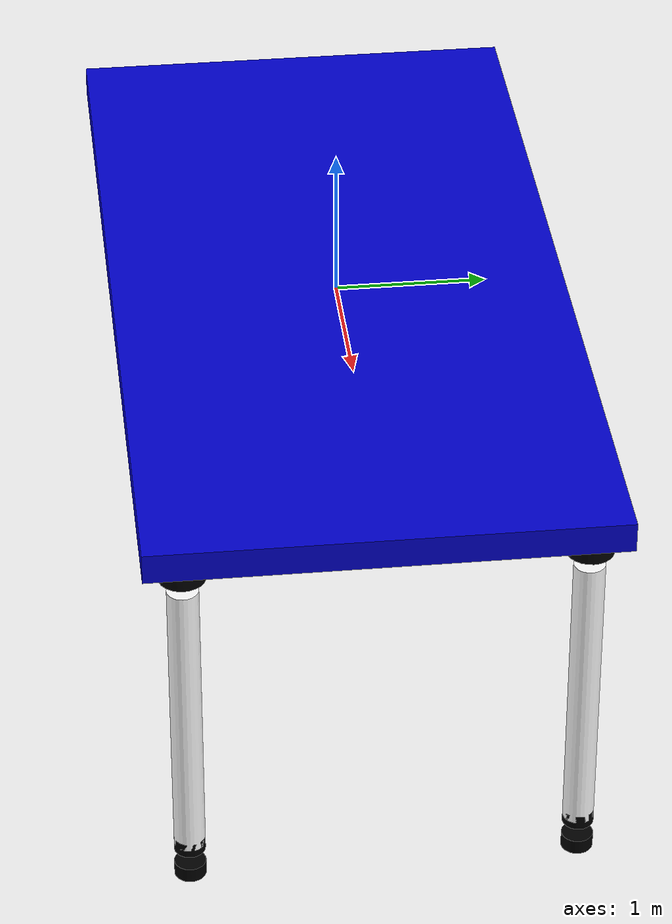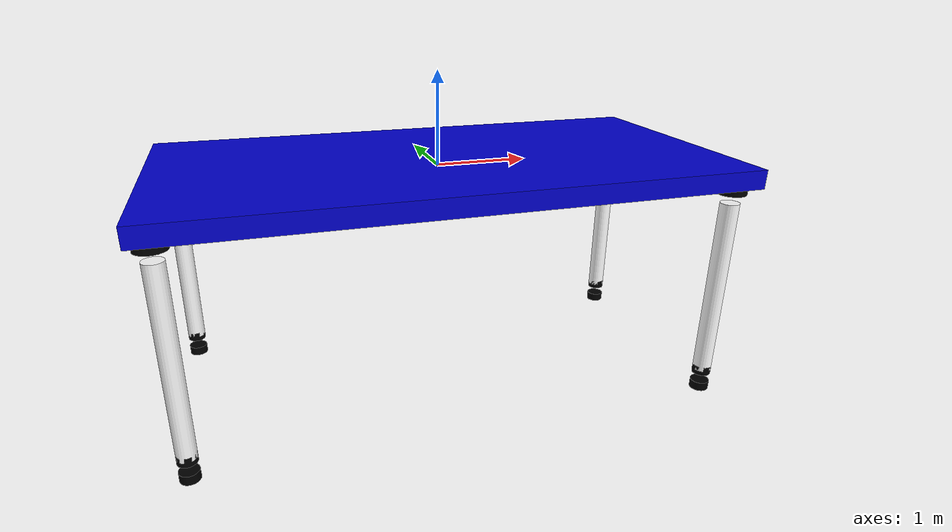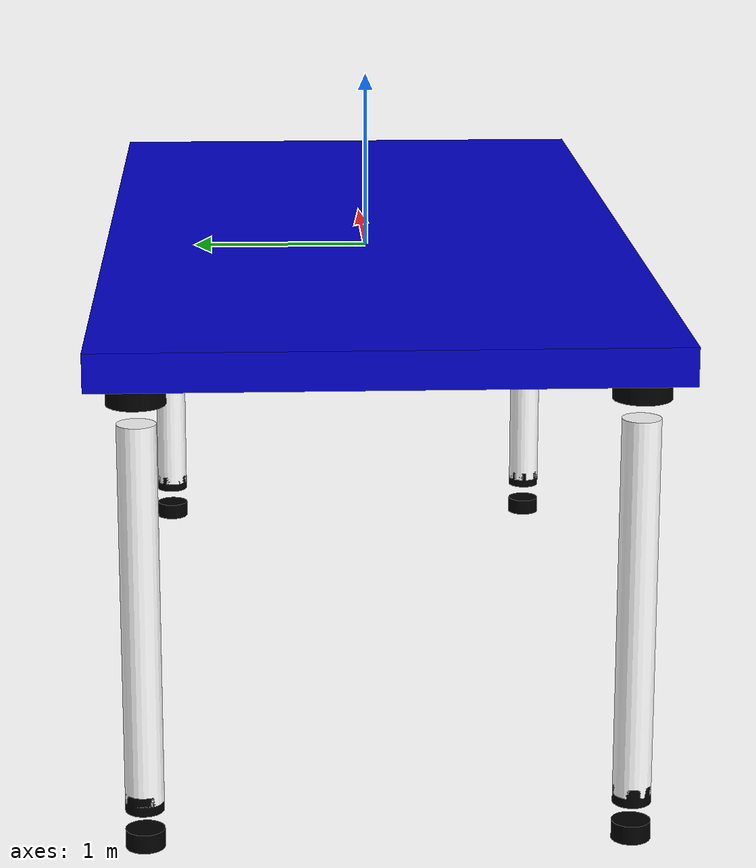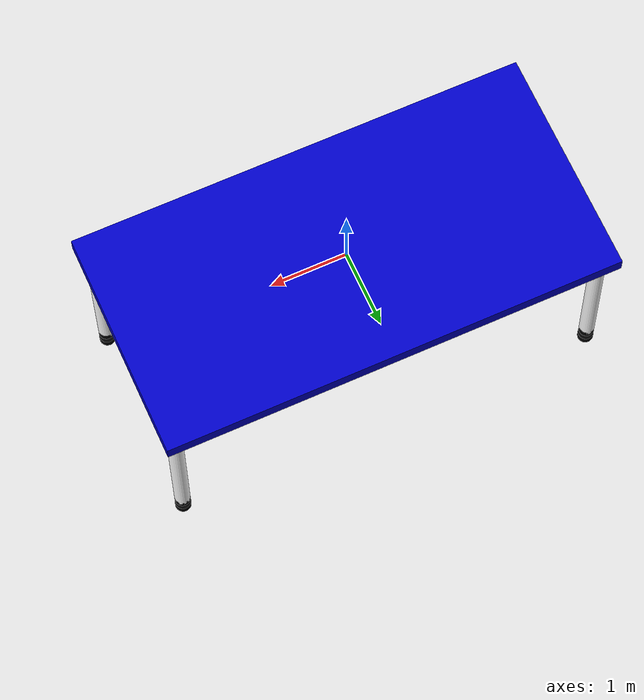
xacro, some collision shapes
<?xml version="1.0"?>
<robot name="swerve_drive_robot" xmlns:xacro="http://www.ros.org/wiki/xacro">

  <xacro:property name="PI" value="3.1415926535897931" />

  <!-- Properties -->
  <xacro:property name="wheelbase" value="5.65"/>
  <xacro:property name="track_width" value="2.5"/>
  <xacro:property name="wheel_radius" value="0.102"/>
  <xacro:property name="robot_height" value="0.2"/>
  <xacro:property name="chassis_length" value="6.0"/>
  <xacro:property name="chassis_width" value="3.0"/>
  <xacro:property name="suspension_length" value="0.1"/> <!-- 서스펜션 링크 길이 -->
  <xacro:property name="suspension_travel" value="0.075"/>
  <xacro:property name="pillar_length" value="2.0"/> <!-- 기둥 길이 -->
  <xacro:property name="lidar_wheelbase" value="5.90"/>
  <xacro:property name="lidar_track_width" value="2.75"/>
  <xacro:property name="lidar_height" value="0.34" />
  <xacro:property name="hori_ang" value="${PI*60/180}" />
  <xacro:property name="vert_ang" value="${PI*32.5/180}" />

  <xacro:property name="lidar_height" value="-${pillar_length}" />

  <!-- Materials -->
  <material name="blue">
    <color rgba="0 0 0.8 1"/>
  </material>
  <material name="black">
    <color rgba="0 0 0 1"/>
  </material>
  <material name="white">
    <color rgba="1 1 1 1"/> <!-- 흰색 재질 -->
  </material>

  <!-- Base Link (Robot Chassis) -->
  <link name="base_link">
    <visual>
      <geometry>
        <box size="${chassis_length} ${chassis_width} ${robot_height}"/>
      </geometry>
      <material name="blue"/>
    </visual>
    <collision>
      <geometry>
        <box size="${chassis_length} ${chassis_width} ${robot_height}"/>
      </geometry>
    </collision>
    <inertial>
      <mass value="1.0"/>
      <inertia ixx="10.0" ixy="0.0" ixz="0.0" iyy="10.0" iyz="0.0" izz="10.0"/>
    </inertial>
  </link>

    <joint name="imu_joint" type="fixed">
        <parent link="base_link"/>
        <child link="imu_link"/>
        <origin xyz="0 0 0" rpy="0 0 0"/>
        <axis xyz="0 1 0"/>
    </joint>

    <link name="imu_link">
        <collision>
            <origin xyz="0 0 0" rpy="0 0 0"/>
            <geometry>
	            <box size="0.1 0.1 0.1"/>
            </geometry>
        </collision>
        <visual>
            <origin xyz="0 0 0" rpy="0 0 0"/>
            <geometry>
	            <box size="0.1 0.1 0.1"/>
            </geometry>
            <material name="orange"/>
        </visual>

        <inertial>
            <origin xyz="0 0 0" rpy="0 0 0"/>
            <mass value="0.1"/>
            <inertia
	        ixx="0.00016667" ixy="0.0" ixz="0.0"
	        iyy="0.00016667" iyz="0.0"
	        izz="0.00016667"/>
        </inertial>
    </link>

<gazebo reference="imu_link">
        <gravity>true</gravity>
        <sensor name="imu_sensor" type="imu">
            <always_on>true</always_on>
            <update_rate>50</update_rate>
            <visualize>true</visualize>
            <topic>__default_topic__</topic>
            <plugin filename="libgazebo_ros_imu_sensor.so" name="imu_plugin">
                <topicName>/imu/data_raw</topicName>
                <bodyName>imu_link</bodyName>
                <updateRateHZ>50.0</updateRateHZ>
                <gaussianNoise>0.0</gaussianNoise>
                <xyzOffset>0 0 0</xyzOffset>
                <rpyOffset>0 0 0</rpyOffset>
                <frameName>imu_link</frameName>
                <initialOrientationAsReference>false</initialOrientationAsReference>
            </plugin>
            <pose>0 0 0 0 0 0</pose>
        </sensor>
    </gazebo>

  <!-- Macro for Swerve Module -->
  <xacro:macro name="swerve_module" params="prefix x y drive_axis steer_motor_id drive_motor_id">
    <!-- Steering Link -->
    <link name="${prefix}_steering_link">
      <visual>
        <geometry>
          <cylinder radius="0.15" length="0.2"/>
        </geometry>
        <material name="black"/>
      </visual>
      <collision>
        <geometry>
          <cylinder radius="0.15" length="0.2"/>
        </geometry>
      </collision>
      <inertial>
        <mass value="1.0"/>
        <inertia ixx="0.01" ixy="0.0" ixz="0.0" iyy="0.01" iyz="0.0" izz="0.01"/>
      </inertial>
    </link>
    <joint name="${prefix}_steering_joint" type="continuous">
      <parent link="base_link"/>
      <child link="${prefix}_steering_link"/>
      <origin xyz="${x} ${y} -${robot_height/2}" rpy="0 0 0"/>
      <axis xyz="0 0 -1"/> <!-- Steering: +angle is CCW -->
      <dynamics damping="1.0" friction="0.5"/>
    </joint>

    <!-- Pillar Link (2.0m White Pillar) -->
    <link name="${prefix}_pillar_link">
      <visual>
        <geometry>
          <cylinder radius="0.1" length="${pillar_length}"/>
        </geometry>
        <origin xyz="0 0 -${pillar_length/2}"/> <!-- 중심을 기둥 중간에 -->
        <material name="white"/>
      </visual>
      <collision>
        <geometry>
          <cylinder radius="0.1" length="${pillar_length}"/>
        </geometry>
        <origin xyz="0 0 -${pillar_length/2}"/>
      </collision>
      <inertial>
        <mass value="2.0"/> <!-- 2m 기둥의 질량 -->
        <inertia ixx="0.333" ixy="0.0" ixz="0.0" iyy="0.333" iyz="0.0" izz="0.02"/>
      </inertial>
    </link>
    <joint name="${prefix}_pillar_joint" type="fixed">
      <parent link="${prefix}_steering_link"/>
      <child link="${prefix}_pillar_link"/>
      <origin xyz="0 0 -0.2"/> <!-- steering_link 아래에 고정 -->
    </joint>

    <!-- Suspension Link -->
    <link name="${prefix}_suspension_link">
      <visual>
        <geometry>
          <cylinder radius="0.1" length="${suspension_length}"/>
        </geometry>
        <material name="black"/>
      </visual>
      <collision>
        <geometry>
          <cylinder radius="0.1" length="${suspension_length}"/>
        </geometry>
      </collision>
      <inertial>
        <mass value="0.5"/>
        <inertia ixx="0.005" ixy="0.0" ixz="0.0" iyy="0.005" iyz="0.0" izz="0.005"/>
      </inertial>
    </link>
    <joint name="${prefix}_suspension_joint" type="prismatic">
      <parent link="${prefix}_pillar_link"/>
      <child link="${prefix}_suspension_link"/>
      <origin xyz="0 0 -${pillar_length}" rpy="0 0 0"/> <!-- 기둥 끝에 위치 -->
      <axis xyz="0 0 1"/> <!-- z축 수직 이동 -->
      <limit lower="-${suspension_travel}" upper="${suspension_travel}" effort="1000.0" velocity="1.0"/>
      <dynamics damping="15.0" friction="0.01"/> <!-- 최적화된 댐핑 -->
    </joint>

    <!-- Wheel Link -->
    <link name="${prefix}_wheel_link">
      <visual>
        <geometry>
          <mesh filename="package://happy_robo/meshes/wheel.dae"/>
        </geometry>
        <material name="black"/>
      </visual>
      <collision>
        <geometry>
          <cylinder radius="${wheel_radius}" length="0.1"/>
        </geometry>
      </collision>
      <inertial>
        <mass value="0.5"/>
        <inertia ixx="0.001" ixy="0.0" ixz="0.0" iyy="0.001" iyz="0.0" izz="0.001"/>
      </inertial>
    </link>
    <joint name="${prefix}_wheel_joint" type="continuous">
      <parent link="${prefix}_suspension_link"/>
      <child link="${prefix}_wheel_link"/>
      <origin xyz="0 0 -${suspension_length + 0.102}" rpy="0 0 0"/> <!-- 바퀴 반지름 고려 -->
      <axis xyz="${drive_axis}"/>
      <dynamics damping="10.0" friction="0"/>
    </joint>

    <!-- Transmission for Steering -->
    <transmission name="${prefix}_steering_trans">
      <type>transmission_interface/SimpleTransmission</type>
      <joint name="${prefix}_steering_joint">
        <hardwareInterface>hardware_interface/PositionJointInterface</hardwareInterface>
      </joint>
      <actuator name="steering_motor_${steer_motor_id}">
        <mechanicalReduction>1</mechanicalReduction>
      </actuator>
    </transmission>

    <!-- Transmission for Wheel -->
    <transmission name="${prefix}_wheel_trans">
      <type>transmission_interface/SimpleTransmission</type>
      <joint name="${prefix}_wheel_joint">
        <hardwareInterface>hardware_interface/VelocityJointInterface</hardwareInterface>
      </joint>
      <actuator name="drive_motor_${drive_motor_id}">
        <mechanicalReduction>1</mechanicalReduction>
      </actuator>
    </transmission>

    <!-- Gazebo properties for Wheel -->
    <gazebo reference="${prefix}_wheel_link">
      <material>Gazebo/Black</material>
      <mu1>0.6</mu1> <!-- 마찰 최적화 -->
      <mu2>0.6</mu2>
      <kp>1e4</kp> <!-- 접촉 강성 감소 -->
      <kd>300.0</kd> <!-- 접촉 댐핑 증가 -->
    </gazebo>

    <!-- Gazebo properties for Pillar -->
    <gazebo reference="${prefix}_pillar_link">
      <material>Gazebo/White</material> <!-- 흰색 시각화 -->
    </gazebo>

    <!-- Gazebo properties for Suspension -->
    <gazebo reference="${prefix}_suspension_joint">
      <springReference>0.0</springReference>
      <springStiffness>800.0</springStiffness> <!-- 최적화 -->
      <springDamping>80.0</springDamping> <!-- 최적화 -->
    </gazebo>
  </xacro:macro>

  <!-- Instantiate Swerve Modules -->
  <xacro:swerve_module prefix="front_left" x="${wheelbase/2}" y="${track_width/2}" drive_axis="0 -1 0" steer_motor_id="5" drive_motor_id="1"/>
  <xacro:swerve_module prefix="front_right" x="${wheelbase/2}" y="-${track_width/2}" drive_axis="0 1 0" steer_motor_id="6" drive_motor_id="2"/>
  <xacro:swerve_module prefix="rear_left" x="-${wheelbase/2}" y="${track_width/2}" drive_axis="0 -1 0" steer_motor_id="7" drive_motor_id="3"/>
  <xacro:swerve_module prefix="rear_right" x="-${wheelbase/2}" y="-${track_width/2}" drive_axis="0 1 0" steer_motor_id="8" drive_motor_id="4"/>

  <!-- Gazebo Plugins -->
  <gazebo>
    <plugin name="gazebo_ros_control" filename="libgazebo_ros_control.so">
      <robotNamespace>/swerve_drive_robot</robotNamespace>
    </plugin>
  </gazebo>

  <!-- Gazebo properties for Base Link -->
  <gazebo reference="base_link">
    <material>Gazebo/Blue</material>
  </gazebo>

    <link name="laser_frame_0">
  </link>
  <joint name="laser_joint_0" type="fixed">
    <parent link="base_link" />
    <child link="laser_frame_0" />
    <origin xyz="${lidar_wheelbase/2} ${lidar_track_width/2} ${lidar_height}" rpy="0 0 0"/>
  </joint>

  <link name="laser_frame_1">
  </link>
  <joint name="laser_joint_1" type="fixed">
    <parent link="base_link" />
    <child link="laser_frame_1" />
    <origin xyz="${lidar_wheelbase/2} ${-lidar_track_width/2} ${lidar_height}" rpy="0 0 0"/>
  </joint>

  <link name="laser_frame_2">
  </link>
  <joint name="laser_joint_2" type="fixed">
    <parent link="base_link" />
    <child link="laser_frame_2" />
    <origin xyz="${-lidar_wheelbase/2} ${-lidar_track_width/2} ${lidar_height}" rpy="0 0 ${PI}"/>
  </joint>

  <link name="laser_frame_3">
  </link>
  <joint name="laser_joint_3" type="fixed">
    <parent link="base_link" />
    <child link="laser_frame_3" />
    <origin xyz="${-lidar_wheelbase/2} ${lidar_track_width/2} ${lidar_height}" rpy="0 0 ${PI}"/>
  </joint>

  <link name="laser_frame_4">
  </link>
  <joint name="laser_joint_4" type="fixed">
    <parent link="base_link" />
    <child link="laser_frame_4" />
    <origin xyz="${lidar_wheelbase/2} ${lidar_track_width/2} ${lidar_height}" rpy="0 0 ${PI/2}"/>
  </joint>

  <link name="laser_frame_5">
  </link>
  <joint name="laser_joint_5" type="fixed">
    <parent link="base_link" />
    <child link="laser_frame_5" />
    <origin xyz="${lidar_wheelbase/2} ${-lidar_track_width/2} ${lidar_height}" rpy="0 0 -${PI/2}"/>
  </joint>

  <link name="laser_frame_6">
  </link>
  <joint name="laser_joint_6" type="fixed">
    <parent link="base_link" />
    <child link="laser_frame_6" />
    <origin xyz="${-lidar_wheelbase/2} ${-lidar_track_width/2} ${lidar_height}" rpy="0 0 -${PI/2}"/>
  </joint>

  <link name="laser_frame_7">
  </link>
  <joint name="laser_joint_7" type="fixed">
    <parent link="base_link" />
    <child link="laser_frame_7" />
    <origin xyz="${-lidar_wheelbase/2} ${lidar_track_width/2} ${lidar_height}" rpy="0 0 ${PI/2}"/>
  </joint>

    <gazebo reference="laser_frame_0">
        <sensor type="ray" name="laser_frame_0">
            <pose>0 0 0 0 0 0</pose>
            <visualize>true</visualize>
            <update_rate>15</update_rate>
            <ray>
                <scan>
                    <horizontal>
                        <samples>160</samples>
                        <resolution>1</resolution>
                        <min_angle>${-hori_ang}</min_angle>
                        <max_angle>${hori_ang}</max_angle>
                    </horizontal>
                </scan>
                <range>
                    <min>0.20</min>
                    <max>8.0</max>
                    <resolution>0.01</resolution>
                </range>
            </ray>
            <plugin name="laser_frame_0" filename="libgazebo_ros_laser.so">
                <topicName>/cygbot/scan/2d/0</topicName>
                <frameName>laser_frame_0</frameName>
            </plugin>
        </sensor>
    </gazebo>

    <gazebo reference="laser_frame_0">
      <material>Gazebo/FlatBlack</material>
      <sensor type="gpu_ray" name="point_frame_0">
        <pose>0 0 0 0 0 0</pose>
        <visualize>false</visualize>
        <update_rate>15</update_rate>
        <ray>
          <scan>
            <horizontal>
              <samples>160</samples>
              <resolution>1</resolution>
              <min_angle>${-hori_ang}</min_angle>
              <max_angle>${hori_ang}</max_angle>
            </horizontal>
            <vertical>
              <samples>60</samples>
              <resolution>1.0</resolution>
              <min_angle>-${vert_ang}</min_angle>
              <max_angle>${vert_ang}</max_angle>
            </vertical>
          </scan>
          <range>
            <min>0.05</min>
            <max>2.0</max>
            <resolution>0.01</resolution>
          </range>
          <noise>
            <type>gaussian</type>
            <mean>0.0</mean>
            <stddev>0.01</stddev>
          </noise>
        </ray>
        <plugin name="point_frame_0" filename="libgazebo_ros_velodyne_gpu_laser.so">
          <topicName>/cygbot/point/3d/0</topicName>
          <frameName>laser_frame_0</frameName>
        </plugin>
      </sensor>
    </gazebo>

        <gazebo reference="laser_frame_1">
        <sensor type="ray" name="laser_frame_1">
            <pose>0 0 0 0 0 0</pose>
            <visualize>true</visualize>
            <update_rate>15</update_rate>
            <ray>
                <scan>
                    <horizontal>
                        <samples>160</samples>
                        <resolution>1</resolution>
                        <min_angle>${-hori_ang}</min_angle>
                        <max_angle>${hori_ang}</max_angle>
                    </horizontal>
                </scan>
                <range>
                    <min>0.20</min>
                    <max>8.0</max>
                    <resolution>0.01</resolution>
                </range>
            </ray>
            <plugin name="laser_frame_1" filename="libgazebo_ros_laser.so">
                <topicName>/cygbot/scan/2d/1</topicName>
                <frameName>laser_frame_1</frameName>
            </plugin>
        </sensor>
    </gazebo>

    <gazebo reference="laser_frame_1">
      <material>Gazebo/FlatBlack</material>
      <sensor type="gpu_ray" name="point_frame_1">
        <pose>0 0 0 0 0 0</pose>
        <visualize>false</visualize>
        <update_rate>15</update_rate>
        <ray>
          <scan>
            <horizontal>
              <samples>160</samples>
              <resolution>1</resolution>
              <min_angle>${-hori_ang}</min_angle>
              <max_angle>${hori_ang}</max_angle>
            </horizontal>
            <vertical>
              <samples>60</samples>
              <resolution>1.0</resolution>
              <min_angle>-${vert_ang}</min_angle>
              <max_angle>${vert_ang}</max_angle>
            </vertical>
          </scan>
          <range>
            <min>0.05</min>
            <max>2.0</max>
            <resolution>0.01</resolution>
          </range>
          <noise>
            <type>gaussian</type>
            <mean>0.0</mean>
            <stddev>0.01</stddev>
          </noise>
        </ray>
        <plugin name="point_frame_1" filename="libgazebo_ros_velodyne_gpu_laser.so">
          <topicName>/cygbot/point/3d/1</topicName>
          <frameName>laser_frame_1</frameName>
        </plugin>
      </sensor>
    </gazebo>

        <gazebo reference="laser_frame_2">
        <sensor type="ray" name="laser_frame_2">
            <pose>0 0 0 0 0 0</pose>
            <visualize>true</visualize>
            <update_rate>15</update_rate>
            <ray>
                <scan>
                    <horizontal>
                        <samples>160</samples>
                        <resolution>1</resolution>
                        <min_angle>${-hori_ang}</min_angle>
                        <max_angle>${hori_ang}</max_angle>
                    </horizontal>
                </scan>
                <range>
                    <min>0.20</min>
                    <max>8.0</max>
                    <resolution>0.01</resolution>
                </range>
            </ray>
            <plugin name="laser_frame_2" filename="libgazebo_ros_laser.so">
                <topicName>/cygbot/scan/2d/2</topicName>
                <frameName>laser_frame_2</frameName>
            </plugin>
        </sensor>
    </gazebo>

    <gazebo reference="laser_frame_2">
      <material>Gazebo/FlatBlack</material>
      <sensor type="gpu_ray" name="point_frame_2">
        <pose>0 0 0 0 0 0</pose>
        <visualize>false</visualize>
        <update_rate>15</update_rate>
        <ray>
          <scan>
            <horizontal>
              <samples>160</samples>
              <resolution>1</resolution>
              <min_angle>${-hori_ang}</min_angle>
              <max_angle>${hori_ang}</max_angle>
            </horizontal>
            <vertical>
              <samples>60</samples>
              <resolution>1.0</resolution>
              <min_angle>-${vert_ang}</min_angle>
              <max_angle>${vert_ang}</max_angle>
            </vertical>
          </scan>
          <range>
            <min>0.05</min>
            <max>2.0</max>
            <resolution>0.01</resolution>
          </range>
          <noise>
            <type>gaussian</type>
            <mean>0.0</mean>
            <stddev>0.01</stddev>
          </noise>
        </ray>
        <plugin name="point_frame_2" filename="libgazebo_ros_velodyne_gpu_laser.so">
          <topicName>/cygbot/point/3d/2</topicName>
          <frameName>laser_frame_2</frameName>
        </plugin>
      </sensor>
    </gazebo>

        <gazebo reference="laser_frame_3">
        <sensor type="ray" name="laser_frame_3">
            <pose>0 0 0 0 0 0</pose>
            <visualize>true</visualize>
            <update_rate>15</update_rate>
            <ray>
                <scan>
                    <horizontal>
                        <samples>160</samples>
                        <resolution>1</resolution>
                        <min_angle>${-hori_ang}</min_angle>
                        <max_angle>${hori_ang}</max_angle>
                    </horizontal>
                </scan>
                <range>
                    <min>0.20</min>
                    <max>8.0</max>
                    <resolution>0.01</resolution>
                </range>
            </ray>
            <plugin name="laser_frame_3" filename="libgazebo_ros_laser.so">
                <topicName>/cygbot/scan/2d/3</topicName>
                <frameName>laser_frame_3</frameName>
            </plugin>
        </sensor>
    </gazebo>

    <gazebo reference="laser_frame_3">
      <material>Gazebo/FlatBlack</material>
      <sensor type="gpu_ray" name="point_frame_3">
        <pose>0 0 0 0 0 0</pose>
        <visualize>false</visualize>
        <update_rate>15</update_rate>
        <ray>
          <scan>
            <horizontal>
              <samples>160</samples>
              <resolution>1</resolution>
              <min_angle>${-hori_ang}</min_angle>
              <max_angle>${hori_ang}</max_angle>
            </horizontal>
            <vertical>
              <samples>60</samples>
              <resolution>1.0</resolution>
              <min_angle>-${vert_ang}</min_angle>
              <max_angle>${vert_ang}</max_angle>
            </vertical>
          </scan>
          <range>
            <min>0.05</min>
            <max>2.0</max>
            <resolution>0.01</resolution>
          </range>
          <noise>
            <type>gaussian</type>
            <mean>0.0</mean>
            <stddev>0.01</stddev>
          </noise>
        </ray>
        <plugin name="point_frame_3" filename="libgazebo_ros_velodyne_gpu_laser.so">
          <topicName>/cygbot/point/3d/3</topicName>
          <frameName>laser_frame_3</frameName>
        </plugin>
      </sensor>
    </gazebo>

        <gazebo reference="laser_frame_4">
        <sensor type="ray" name="laser_frame_4">
            <pose>0 0 0 0 0 0</pose>
            <visualize>true</visualize>
            <update_rate>15</update_rate>
            <ray>
                <scan>
                    <horizontal>
                        <samples>160</samples>
                        <resolution>1</resolution>
                        <min_angle>${-hori_ang}</min_angle>
                        <max_angle>${hori_ang}</max_angle>
                    </horizontal>
                </scan>
                <range>
                    <min>0.20</min>
                    <max>8.0</max>
                    <resolution>0.01</resolution>
                </range>
            </ray>
            <plugin name="laser_frame_4" filename="libgazebo_ros_laser.so">
                <topicName>/cygbot/scan/2d/4</topicName>
                <frameName>laser_frame_4</frameName>
            </plugin>
        </sensor>
    </gazebo>

    <gazebo reference="laser_frame_4">
      <material>Gazebo/FlatBlack</material>
      <sensor type="gpu_ray" name="point_frame_4">
        <pose>0 0 0 0 0 0</pose>
        <visualize>false</visualize>
        <update_rate>15</update_rate>
        <ray>
          <scan>
            <horizontal>
              <samples>160</samples>
              <resolution>1</resolution>
              <min_angle>${-hori_ang}</min_angle>
              <max_angle>${hori_ang}</max_angle>
            </horizontal>
            <vertical>
              <samples>60</samples>
              <resolution>1.0</resolution>
              <min_angle>-${vert_ang}</min_angle>
              <max_angle>${vert_ang}</max_angle>
            </vertical>
          </scan>
          <range>
            <min>0.05</min>
            <max>2.0</max>
            <resolution>0.01</resolution>
          </range>
          <noise>
            <type>gaussian</type>
            <mean>0.0</mean>
            <stddev>0.01</stddev>
          </noise>
        </ray>
        <plugin name="point_frame_4" filename="libgazebo_ros_velodyne_gpu_laser.so">
          <topicName>/cygbot/point/3d/4</topicName>
          <frameName>laser_frame_4</frameName>
        </plugin>
      </sensor>
    </gazebo>

        <gazebo reference="laser_frame_5">
        <sensor type="ray" name="laser_frame_5">
            <pose>0 0 0 0 0 0</pose>
            <visualize>true</visualize>
            <update_rate>15</update_rate>
            <ray>
                <scan>
                    <horizontal>
                        <samples>160</samples>
                        <resolution>1</resolution>
                        <min_angle>${-hori_ang}</min_angle>
                        <max_angle>${hori_ang}</max_angle>
                    </horizontal>
                </scan>
                <range>
                    <min>0.20</min>
                    <max>8.0</max>
                    <resolution>0.01</resolution>
                </range>
            </ray>
            <plugin name="laser_frame_5" filename="libgazebo_ros_laser.so">
                <topicName>/cygbot/scan/2d/5</topicName>
                <frameName>laser_frame_5</frameName>
            </plugin>
        </sensor>
    </gazebo>

        <gazebo reference="laser_frame_5">
      <material>Gazebo/FlatBlack</material>
      <sensor type="gpu_ray" name="point_frame_5">
        <pose>0 0 0 0 0 0</pose>
        <visualize>false</visualize>
        <update_rate>15</update_rate>
        <ray>
          <scan>
            <horizontal>
              <samples>160</samples>
              <resolution>1</resolution>
              <min_angle>${-hori_ang}</min_angle>
              <max_angle>${hori_ang}</max_angle>
            </horizontal>
            <vertical>
              <samples>60</samples>
              <resolution>1.0</resolution>
              <min_angle>-${vert_ang}</min_angle>
              <max_angle>${vert_ang}</max_angle>
            </vertical>
          </scan>
          <range>
            <min>0.05</min>
            <max>2.0</max>
            <resolution>0.01</resolution>
          </range>
          <noise>
            <type>gaussian</type>
            <mean>0.0</mean>
            <stddev>0.01</stddev>
          </noise>
        </ray>
        <plugin name="point_frame_5" filename="libgazebo_ros_velodyne_gpu_laser.so">
          <topicName>/cygbot/point/3d/5</topicName>
          <frameName>laser_frame_5</frameName>
        </plugin>
      </sensor>
    </gazebo>

        <gazebo reference="laser_frame_6">
        <sensor type="ray" name="laser_frame_6">
            <pose>0 0 0 0 0 0</pose>
            <visualize>true</visualize>
            <update_rate>15</update_rate>
            <ray>
                <scan>
                    <horizontal>
                        <samples>160</samples>
                        <resolution>1</resolution>
                        <min_angle>${-hori_ang}</min_angle>
                        <max_angle>${hori_ang}</max_angle>
                    </horizontal>
                </scan>
                <range>
                    <min>0.20</min>
                    <max>8.0</max>
                    <resolution>0.01</resolution>
                </range>
            </ray>
            <plugin name="laser_frame_6" filename="libgazebo_ros_laser.so">
                <topicName>/cygbot/scan/2d/6</topicName>
                <frameName>laser_frame_6</frameName>
            </plugin>
        </sensor>
    </gazebo>

        <gazebo reference="laser_frame_6">
      <material>Gazebo/FlatBlack</material>
      <sensor type="gpu_ray" name="point_frame_6">
        <pose>0 0 0 0 0 0</pose>
        <visualize>false</visualize>
        <update_rate>15</update_rate>
        <ray>
          <scan>
            <horizontal>
              <samples>160</samples>
              <resolution>1</resolution>
              <min_angle>${-hori_ang}</min_angle>
              <max_angle>${hori_ang}</max_angle>
            </horizontal>
            <vertical>
              <samples>60</samples>
              <resolution>1.0</resolution>
              <min_angle>-${vert_ang}</min_angle>
              <max_angle>${vert_ang}</max_angle>
            </vertical>
          </scan>
          <range>
            <min>0.05</min>
            <max>2.0</max>
            <resolution>0.01</resolution>
          </range>
          <noise>
            <type>gaussian</type>
            <mean>0.0</mean>
            <stddev>0.01</stddev>
          </noise>
        </ray>
        <plugin name="point_frame_6" filename="libgazebo_ros_velodyne_gpu_laser.so">
          <topicName>/cygbot/point/3d/6</topicName>
          <frameName>laser_frame_6</frameName>
        </plugin>
      </sensor>
    </gazebo>

        <gazebo reference="laser_frame_7">
        <sensor type="ray" name="laser_frame_7">
            <pose>0 0 0 0 0 0</pose>
            <visualize>true</visualize>
            <update_rate>15</update_rate>
            <ray>
                <scan>
                    <horizontal>
                        <samples>160</samples>
                        <resolution>1</resolution>
                        <min_angle>${-hori_ang}</min_angle>
                        <max_angle>${hori_ang}</max_angle>
                    </horizontal>
                </scan>
                <range>
                    <min>0.20</min>
                    <max>8.0</max>
                    <resolution>0.01</resolution>
                </range>
            </ray>
            <plugin name="laser_frame_7" filename="libgazebo_ros_laser.so">
                <topicName>/cygbot/scan/2d/7</topicName>
                <frameName>laser_frame_7</frameName>
            </plugin>
        </sensor>
    </gazebo>

      <gazebo reference="laser_frame_7">
      <material>Gazebo/FlatBlack</material>
      <sensor type="gpu_ray" name="point_frame_7">
        <pose>0 0 0 0 0 0</pose>
        <visualize>false</visualize>
        <update_rate>15</update_rate>
        <ray>
          <scan>
            <horizontal>
              <samples>160</samples>
              <resolution>1</resolution>
              <min_angle>${-hori_ang}</min_angle>
              <max_angle>${hori_ang}</max_angle>
            </horizontal>
            <vertical>
              <samples>60</samples>
              <resolution>1.0</resolution>
              <min_angle>-${vert_ang}</min_angle>
              <max_angle>${vert_ang}</max_angle>
            </vertical>
          </scan>
          <range>
            <min>0.05</min>
            <max>2.0</max>
            <resolution>0.01</resolution>
          </range>
          <noise>
            <type>gaussian</type>
            <mean>0.0</mean>
            <stddev>0.01</stddev>
          </noise>
        </ray>
        <plugin name="point_frame_7" filename="libgazebo_ros_velodyne_gpu_laser.so">
          <topicName>/cygbot/point/3d/7</topicName>
          <frameName>laser_frame_7</frameName>
        </plugin>
      </sensor>
    </gazebo>

</robot>
